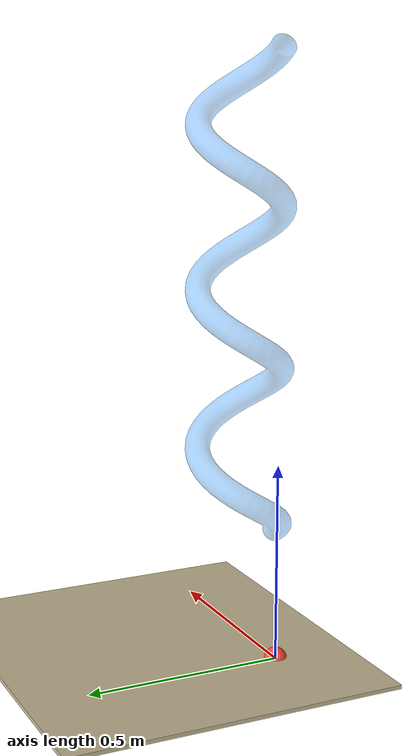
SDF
<?xml version="1.0"?>
<sdf version="1.7" xmlns:drake="http://drake.mit.edu">
  <model name="sphere_and_spiral">

    <!-- The spiral is fixed to the world -->
    <link name="spiral">
      <pose>0 0 1.5 0 0 0</pose>
      <visual name="spiral_visual">
        <pose>0 0 0 0 0 0</pose>
        <geometry>
          <mesh>
            <uri>package://drake/examples/integrators/spiral_fine.obj</uri>
            <scale>1.0 1.0 1.0</scale>
          </mesh>
        </geometry>
        <material>
          <diffuse>0.2 0.6 1.0 0.4</diffuse>
        </material>
      </visual>
      <collision name="spiral_collision">
        <pose>0 0 0 0 0 0</pose>
        <geometry>
          <mesh>
            <uri>package://drake/examples/integrators/spiral_fine.obj</uri>
            <scale>1.0 1.0 1.0</scale>
          </mesh>
        </geometry>
      </collision>
    </link>
    <joint name="spiral_joint" type="fixed">
      <parent>world</parent>
      <child>spiral</child>
    </joint>

    <!-- A thin box as the ground plane -->
    <link name="ground">
      <pose>0 0 0 0 0 0</pose>
      <visual name="ground_visual">
        <geometry>
          <box>
            <size>10 10 0.01</size>
          </box>
        </geometry>
        <material>
          <diffuse>0.8 0.75 0.6 1.0</diffuse>
        </material>
      </visual>
      <collision name="ground_collision">
        <geometry>
          <box>
            <size>10 10 0.01</size>
          </box>
        </geometry>
      </collision>
    </link>
    <joint name="ground_joint" type="fixed">
      <parent>world</parent>
      <child>ground</child>
    </joint>

    <!-- The free-floating sphere -->
    <link name="sphere">
      <pose>0 0 0 0 0 0</pose>
      <inertial>
        <mass>1.0</mass>
        <inertia>
          <ixx>3.5522e-4</ixx>
          <ixy>0</ixy>
          <ixz>0</ixz>
          <iyy>3.5522e-4</iyy>
          <iyz>0</iyz>
          <izz>3.5522e-4</izz>
        </inertia>
      </inertial>
      <visual name="sphere_visual">
        <pose>0 0 0 0 0 0</pose>
        <geometry>
          <sphere>
            <radius>0.0295</radius>
          </sphere>
        </geometry>
        <material>
          <diffuse>1.0 0.3 0.2 1.0</diffuse>
        </material>
      </visual>
      <collision name="sphere_collision">
        <pose>0 0 0 0 0 0</pose>
        <geometry>
          <sphere>
            <radius>0.0295</radius>
          </sphere>
        </geometry>
      </collision>
    </link>

  </model>
</sdf>
